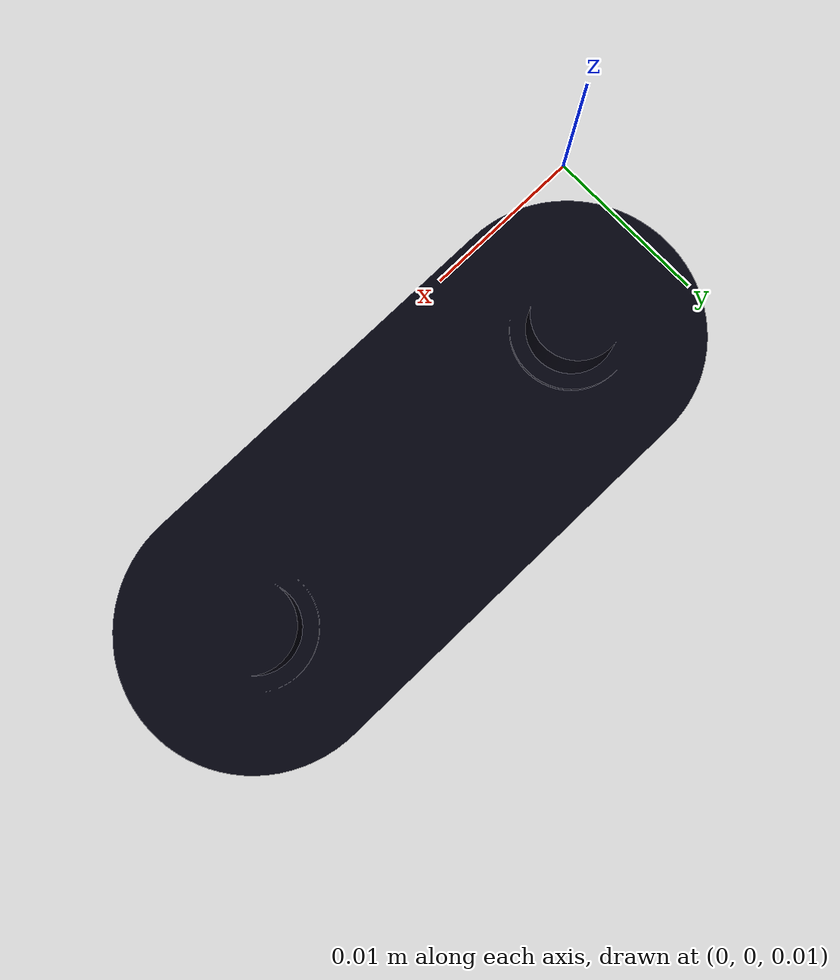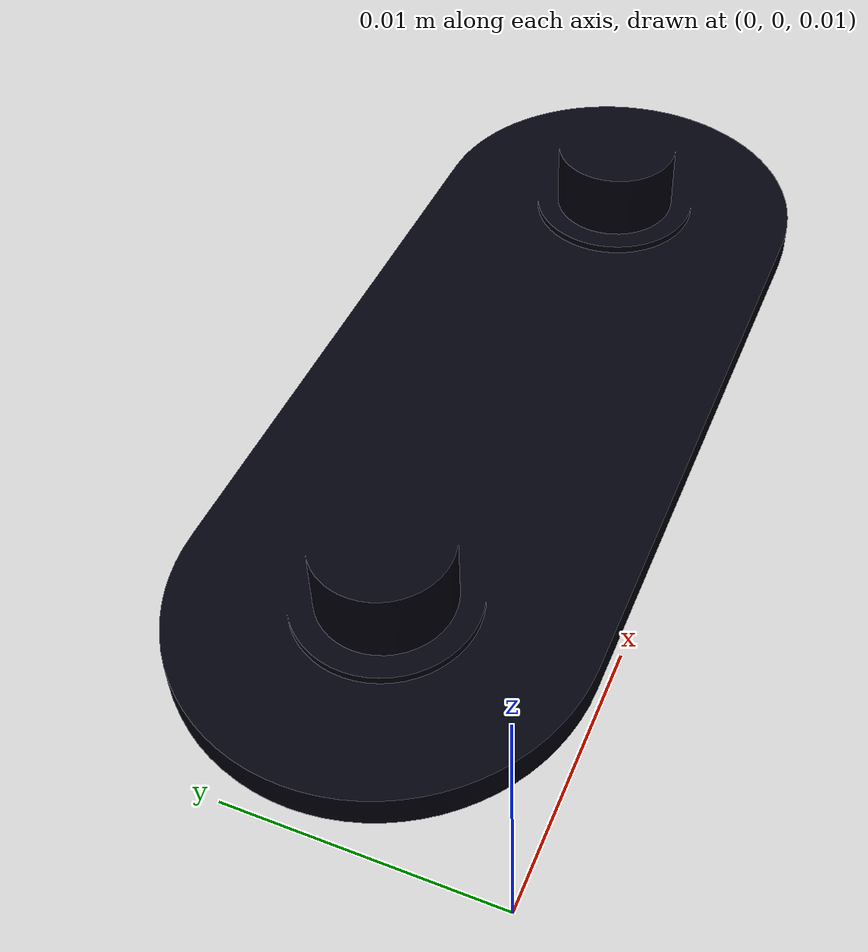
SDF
<?xml version="1.0" ?>
<sdf version="1.5">
  <model name="top_casing">
    <static>false</static>
    <link name="link">
      <collision name="collision">
        <geometry>
          <mesh>
            <scale>1 1 1</scale>
            <uri>model://top_casing/meshes/top_casing.stl</uri>
          </mesh>
        </geometry>
      </collision>
      <visual name="visual">
        <geometry>
          <mesh>
            <scale>1 1 1</scale>
            <uri>model://top_casing/meshes/top_casing.dae</uri>
          </mesh>
        </geometry>
      </visual>
    </link>
  </model>
</sdf>
